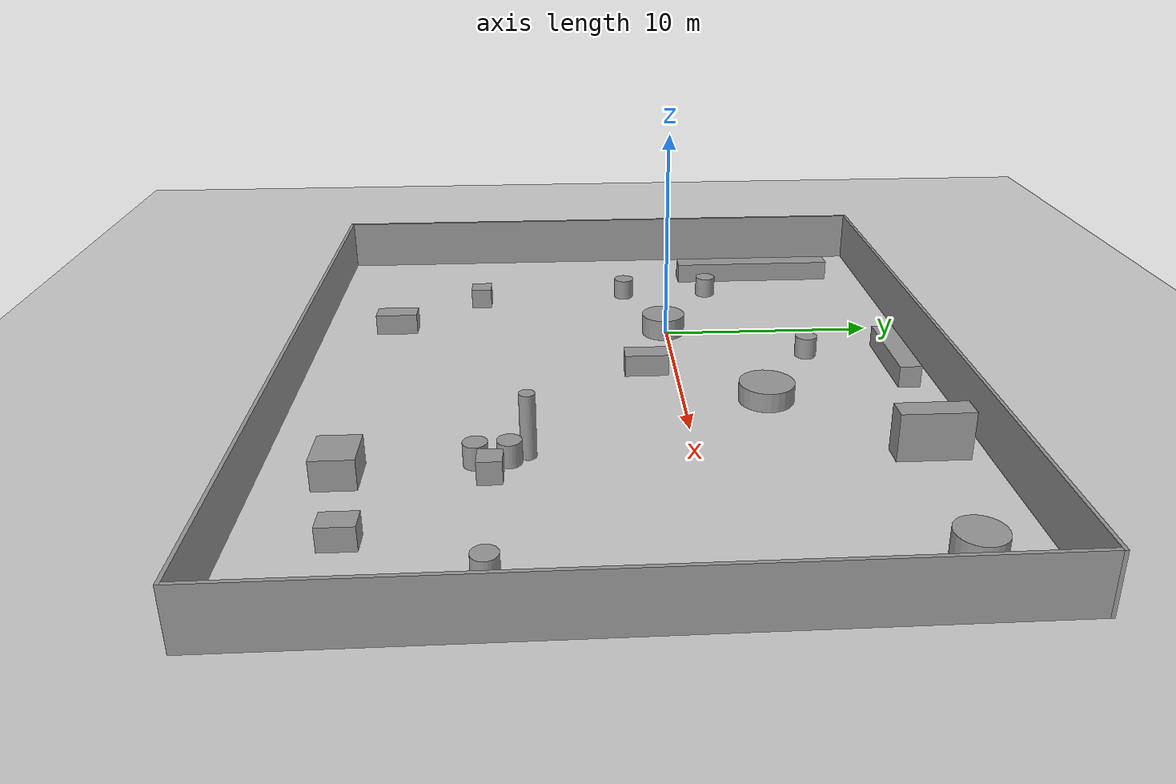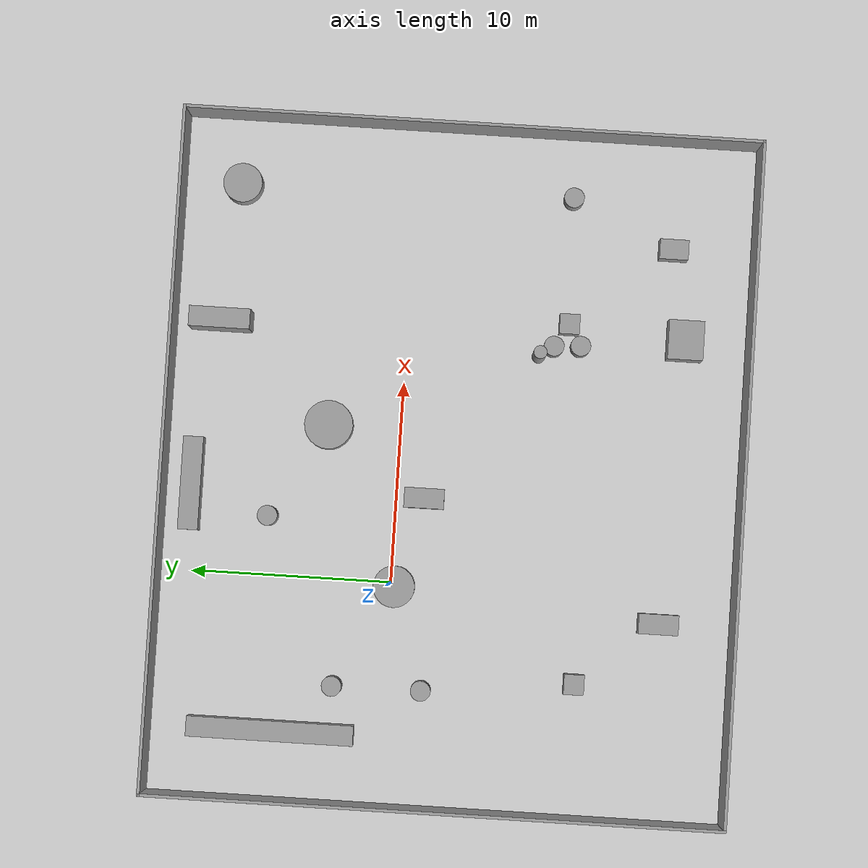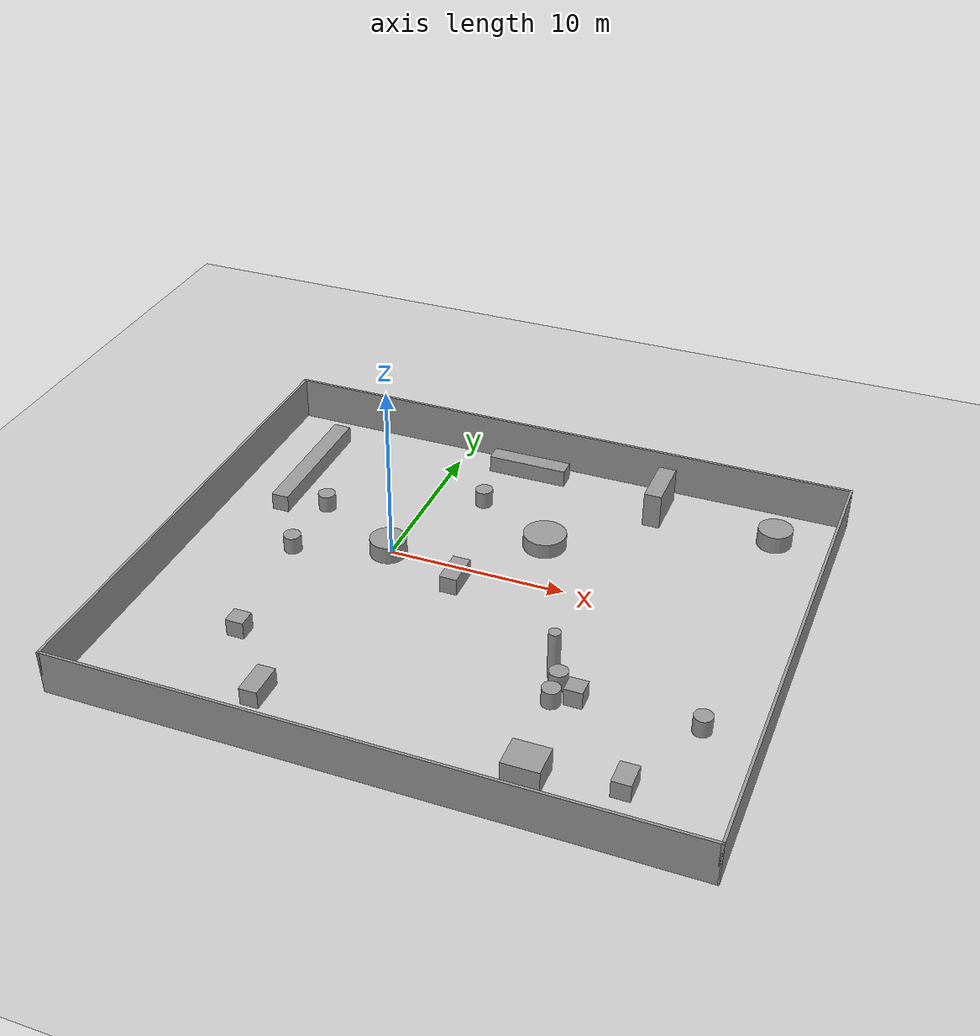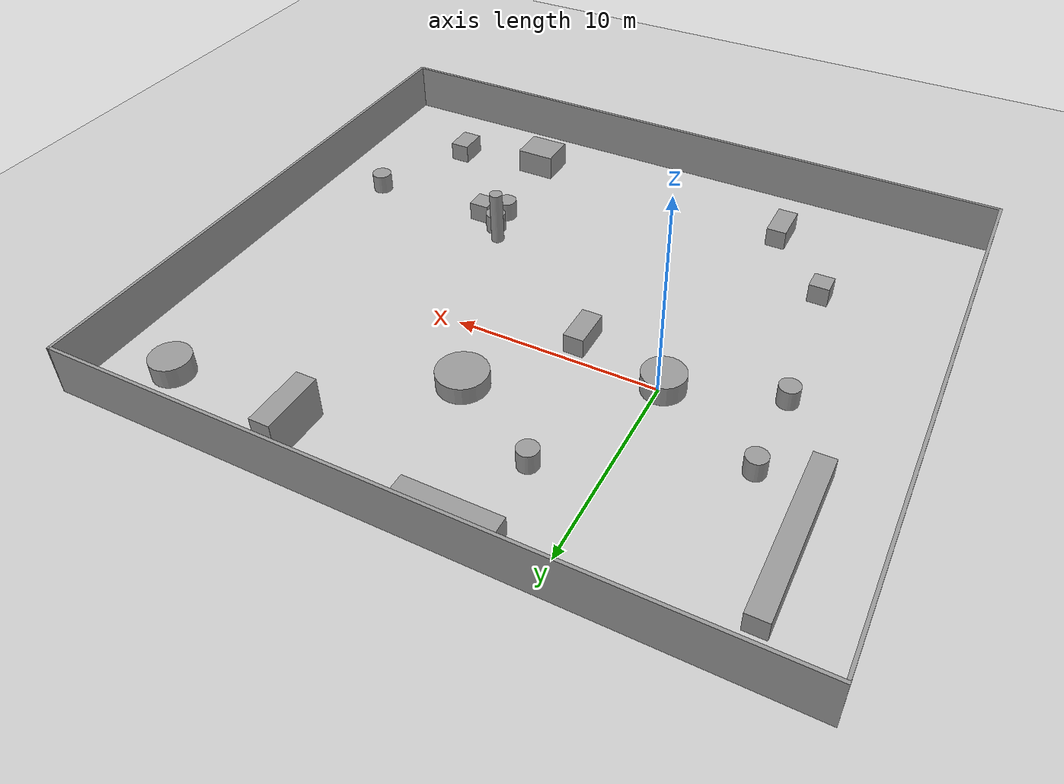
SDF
<sdf version="1.7">
 <world name="default">
  <model name="ground_plane">
   <static>1</static>
   <link name="link">
    <collision name="collision">
     <geometry><plane><normal>0 0 1</normal><size>100 100</size></plane></geometry>
     <surface><friction><ode><mu>100</mu><mu2>50</mu2></ode></friction></surface>
    </collision>
    <visual name="visual">
     <cast_shadows>0</cast_shadows>
     <geometry><plane><normal>0 0 1</normal><size>100 100</size></plane></geometry>
     <material>
      <script><uri>file://media/materials/scripts/gazebo.material</uri><name>Gazebo/Grey</name></script>
     </material>
    </visual>
   </link>
  </model>
  <model name="paper_world">
   <pose>5.91262 -2.7055 0 0 -0 0</pose>
   <link name="Wall_10">
    <collision name="Wall_10_Collision">
     <geometry><box><size>34 0.15 2.5</size></box></geometry>
     <pose>0 0 1.25 0 -0 0</pose>
    </collision>
    <visual name="Wall_10_Visual">
     <pose>0 0 1.25 0 -0 0</pose>
     <geometry><box><size>34 0.15 2.5</size></box></geometry>
     <material>
      <script><uri>file://media/materials/scripts/gazebo.material</uri><name>Gazebo/Grey</name></script>
      <ambient>1 1 1 1</ambient>
     </material>
     <meta><layer>0</layer></meta>
    </visual>
    <pose>-0 14.3 0 0 -0 0</pose>
   </link>
   <link name="Wall_2">
    <collision name="Wall_2_Collision">
     <geometry><box><size>28.75 0.15 2.5</size></box></geometry>
     <pose>0 0 1.25 0 -0 0</pose>
    </collision>
    <visual name="Wall_2_Visual">
     <pose>0 0 1.25 0 -0 0</pose>
     <geometry><box><size>28.75 0.15 2.5</size></box></geometry>
     <material>
      <script><uri>file://media/materials/scripts/gazebo.material</uri><name>Gazebo/Grey</name></script>
      <ambient>1 1 1 1</ambient>
     </material>
     <meta><layer>0</layer></meta>
    </visual>
    <pose>-16.925 -0 0 0 -0 -1.5708</pose>
   </link>
   <link name="Wall_3">
    <collision name="Wall_3_Collision">
     <geometry><box><size>34 0.15 2.5</size></box></geometry>
     <pose>0 0 1.25 0 -0 0</pose>
    </collision>
    <visual name="Wall_3_Visual">
     <pose>0 0 1.25 0 -0 0</pose>
     <geometry><box><size>34 0.15 2.5</size></box></geometry>
     <material>
      <script><uri>file://media/materials/scripts/gazebo.material</uri><name>Gazebo/Grey</name></script>
      <ambient>1 1 1 1</ambient>
     </material>
     <meta><layer>0</layer></meta>
    </visual>
    <pose>-0 -14.3 0 0 -0 0</pose>
   </link>
   <link name="Wall_4">
    <collision name="Wall_4_Collision">
     <geometry><box><size>28.75 0.15 2.5</size></box></geometry>
     <pose>0 0 1.25 0 -0 0</pose>
    </collision>
    <visual name="Wall_4_Visual">
     <pose>0 0 1.25 0 -0 0</pose>
     <geometry><box><size>28.75 0.15 2.5</size></box></geometry>
     <material>
      <script><uri>file://media/materials/scripts/gazebo.material</uri><name>Gazebo/Grey</name></script>
      <ambient>1 1 1 1</ambient>
     </material>
     <meta><layer>0</layer></meta>
    </visual>
    <pose>16.925 -0 0 0 -0 1.5708</pose>
   </link>
   <static>1</static>
  </model>
  <model name="fuza">
   <link name="link_0">
    <inertial>
     <mass>1</mass>
     <inertia><ixx>0.145833</ixx><ixy>0</ixy><ixz>0</ixz><iyy>0.145833</iyy><iyz>0</iyz><izz>0.125</izz></inertia>
    </inertial>
    <pose>-11.9522 5.00292 -0 0 -0 0</pose>
    <visual name="visual">
     <geometry><cylinder><radius>0.5</radius><length>1</length></cylinder></geometry>
     <material>
      <lighting>1</lighting>
      <script><uri>file://media/materials/scripts/gazebo.material</uri><name>Gazebo/Grey</name></script>
      <shader type="pixel"/>
     </material>
    </visual>
    <collision name="collision">
     <geometry><cylinder><radius>0.5</radius><length>1</length></cylinder></geometry>
     <surface>
      <friction>
       <ode><mu>1</mu><mu2>1</mu2><fdir1>0 0 0</fdir1><slip1>0</slip1><slip2>0</slip2></ode>
       <torsional>
        <coefficient>1</coefficient>
        <patch_radius>0</patch_radius>
        <surface_radius>0</surface_radius>
        <use_patch_radius>1</use_patch_radius>
        <ode><slip>0</slip></ode>
       </torsional>
      </friction>
      <bounce><restitution_coefficient>0</restitution_coefficient><threshold>1e+06</threshold></bounce>
      <contact>
       <collide_without_contact>0</collide_without_contact>
       <collide_without_contact_bitmask>1</collide_without_contact_bitmask>
       <collide_bitmask>1</collide_bitmask>
       <ode>
        <soft_cfm>0</soft_cfm>
        <soft_erp>0.2</soft_erp>
        <kp>1e+13</kp>
        <kd>1</kd>
        <max_vel>0.01</max_vel>
        <min_depth>0</min_depth>
       </ode>
       <bullet>
        <split_impulse>1</split_impulse>
        <split_impulse_penetration_threshold>-0.01</split_impulse_penetration_threshold>
        <soft_cfm>0</soft_cfm>
        <soft_erp>0.2</soft_erp>
        <kp>1e+13</kp>
        <kd>1</kd>
       </bullet>
      </contact>
     </surface>
    </collision>
   </link>
   <link name="link_11">
    <inertial>
     <mass>1.98679</mass>
     <inertia>
      <ixx>0.819115</ixx>
      <ixy>0</ixy>
      <ixz>0</ixz>
      <iyy>0.331132</iyy>
      <iyz>0</iyz>
      <izz>0.819115</izz>
     </inertia>
    </inertial>
    <pose>-2.38647 1.012 -0 0 -0 0</pose>
    <visual name="visual">
     <geometry><box><size>1 1.9868 1</size></box></geometry>
     <material>
      <lighting>1</lighting>
      <script><uri>file://media/materials/scripts/gazebo.material</uri><name>Gazebo/Grey</name></script>
      <shader type="pixel"/>
     </material>
    </visual>
    <collision name="collision">
     <geometry><box><size>1 1.9868 1</size></box></geometry>
     <surface>
      <friction>
       <ode><mu>1</mu><mu2>1</mu2><fdir1>0 0 0</fdir1><slip1>0</slip1><slip2>0</slip2></ode>
       <torsional>
        <coefficient>1</coefficient>
        <patch_radius>0</patch_radius>
        <surface_radius>0</surface_radius>
        <use_patch_radius>1</use_patch_radius>
        <ode><slip>0</slip></ode>
       </torsional>
      </friction>
      <bounce><restitution_coefficient>0</restitution_coefficient><threshold>1e+06</threshold></bounce>
      <contact>
       <collide_without_contact>0</collide_without_contact>
       <collide_without_contact_bitmask>1</collide_without_contact_bitmask>
       <collide_bitmask>1</collide_bitmask>
       <ode>
        <soft_cfm>0</soft_cfm>
        <soft_erp>0.2</soft_erp>
        <kp>1e+13</kp>
        <kd>1</kd>
        <max_vel>0.01</max_vel>
        <min_depth>0</min_depth>
       </ode>
       <bullet>
        <split_impulse>1</split_impulse>
        <split_impulse_penetration_threshold>-0.01</split_impulse_penetration_threshold>
        <soft_cfm>0</soft_cfm>
        <soft_erp>0.2</soft_erp>
        <kp>1e+13</kp>
        <kd>1</kd>
       </bullet>
      </contact>
     </surface>
    </collision>
   </link>
   <link name="link_12">
    <inertial>
     <mass>5.11595</mass>
     <inertia><ixx>2.20052</ixx><ixy>0</ixy><ixz>0</ixz><iyy>2.20052</iyy><iyz>0</iyz><izz>3.75336</izz></inertia>
    </inertial>
    <pose>0.962557 5.97068 0 0 -0 0</pose>
    <visual name="visual">
     <geometry><cylinder><radius>1.21133</radius><length>0.871556</length></cylinder></geometry>
     <material>
      <lighting>1</lighting>
      <script><uri>file://media/materials/scripts/gazebo.material</uri><name>Gazebo/Grey</name></script>
      <shader type="pixel"/>
     </material>
    </visual>
    <collision name="collision">
     <geometry><cylinder><radius>1.21133</radius><length>0.871556</length></cylinder></geometry>
     <surface>
      <friction>
       <ode><mu>1</mu><mu2>1</mu2><fdir1>0 0 0</fdir1><slip1>0</slip1><slip2>0</slip2></ode>
       <torsional>
        <coefficient>1</coefficient>
        <patch_radius>0</patch_radius>
        <surface_radius>0</surface_radius>
        <use_patch_radius>1</use_patch_radius>
        <ode><slip>0</slip></ode>
       </torsional>
      </friction>
      <bounce><restitution_coefficient>0</restitution_coefficient><threshold>1e+06</threshold></bounce>
      <contact>
       <collide_without_contact>0</collide_without_contact>
       <collide_without_contact_bitmask>1</collide_without_contact_bitmask>
       <collide_bitmask>1</collide_bitmask>
       <ode>
        <soft_cfm>0</soft_cfm>
        <soft_erp>0.2</soft_erp>
        <kp>1e+13</kp>
        <kd>1</kd>
        <max_vel>0.01</max_vel>
        <min_depth>0</min_depth>
       </ode>
       <bullet>
        <split_impulse>1</split_impulse>
        <split_impulse_penetration_threshold>-0.01</split_impulse_penetration_threshold>
        <soft_cfm>0</soft_cfm>
        <soft_erp>0.2</soft_erp>
        <kp>1e+13</kp>
        <kd>1</kd>
       </bullet>
      </contact>
     </surface>
    </collision>
   </link>
   <link name="link_13">
    <inertial>
     <mass>1.90421</mass>
     <inertia><ixx>3.26258</ixx><ixy>0</ixy><ixz>0</ixz><iyy>3.26258</iyy><iyz>0</iyz><izz>0.100741</izz></inertia>
    </inertial>
    <pose>5.05919 -4.24487 -0 0 -0 0</pose>
    <visual name="visual">
     <geometry><cylinder><radius>0.325283</radius><length>4.4992</length></cylinder></geometry>
     <material>
      <lighting>1</lighting>
      <script><uri>file://media/materials/scripts/gazebo.material</uri><name>Gazebo/Grey</name></script>
      <shader type="pixel"/>
     </material>
    </visual>
    <collision name="collision">
     <geometry><cylinder><radius>0.325283</radius><length>4.4992</length></cylinder></geometry>
     <surface>
      <friction>
       <ode><mu>1</mu><mu2>1</mu2><fdir1>0 0 0</fdir1><slip1>0</slip1><slip2>0</slip2></ode>
       <torsional>
        <coefficient>1</coefficient>
        <patch_radius>0</patch_radius>
        <surface_radius>0</surface_radius>
        <use_patch_radius>1</use_patch_radius>
        <ode><slip>0</slip></ode>
       </torsional>
      </friction>
      <bounce><restitution_coefficient>0</restitution_coefficient><threshold>1e+06</threshold></bounce>
      <contact>
       <collide_without_contact>0</collide_without_contact>
       <collide_without_contact_bitmask>1</collide_without_contact_bitmask>
       <collide_bitmask>1</collide_bitmask>
       <ode>
        <soft_cfm>0</soft_cfm>
        <soft_erp>0.2</soft_erp>
        <kp>1e+13</kp>
        <kd>1</kd>
        <max_vel>0.01</max_vel>
        <min_depth>0</min_depth>
       </ode>
       <bullet>
        <split_impulse>1</split_impulse>
        <split_impulse_penetration_threshold>-0.01</split_impulse_penetration_threshold>
        <soft_cfm>0</soft_cfm>
        <soft_erp>0.2</soft_erp>
        <kp>1e+13</kp>
        <kd>1</kd>
       </bullet>
      </contact>
     </surface>
    </collision>
   </link>
   <link name="link_14">
    <inertial>
     <mass>1.98339</mass>
     <inertia>
      <ixx>0.815475</ixx>
      <ixy>0</ixy>
      <ixz>0</ixz>
      <iyy>0.330564</iyy>
      <iyz>0</iyz>
      <izz>0.815475</izz>
     </inertia>
    </inertial>
    <pose>-7.9015 -10.9556 -0 0 -0 0</pose>
    <visual name="visual">
     <geometry><box><size>1 1.98339 1</size></box></geometry>
     <material>
      <lighting>1</lighting>
      <script><uri>file://media/materials/scripts/gazebo.material</uri><name>Gazebo/Grey</name></script>
      <shader type="pixel"/>
     </material>
    </visual>
    <collision name="collision">
     <geometry><box><size>1 1.98339 1</size></box></geometry>
     <surface>
      <friction>
       <ode><mu>1</mu><mu2>1</mu2><fdir1>0 0 0</fdir1><slip1>0</slip1><slip2>0</slip2></ode>
       <torsional>
        <coefficient>1</coefficient>
        <patch_radius>0</patch_radius>
        <surface_radius>0</surface_radius>
        <use_patch_radius>1</use_patch_radius>
        <ode><slip>0</slip></ode>
       </torsional>
      </friction>
      <bounce><restitution_coefficient>0</restitution_coefficient><threshold>1e+06</threshold></bounce>
      <contact>
       <collide_without_contact>0</collide_without_contact>
       <collide_without_contact_bitmask>1</collide_without_contact_bitmask>
       <collide_bitmask>1</collide_bitmask>
       <ode>
        <soft_cfm>0</soft_cfm>
        <soft_erp>0.2</soft_erp>
        <kp>1e+13</kp>
        <kd>1</kd>
        <max_vel>0.01</max_vel>
        <min_depth>0</min_depth>
       </ode>
       <bullet>
        <split_impulse>1</split_impulse>
        <split_impulse_penetration_threshold>-0.01</split_impulse_penetration_threshold>
        <soft_cfm>0</soft_cfm>
        <soft_erp>0.2</soft_erp>
        <kp>1e+13</kp>
        <kd>1</kd>
       </bullet>
      </contact>
     </surface>
    </collision>
   </link>
   <link name="link_15">
    <inertial>
     <mass>1</mass>
     <inertia><ixx>0.145833</ixx><ixy>0</ixy><ixz>0</ixz><iyy>0.145833</iyy><iyz>0</iyz><izz>0.125</izz></inertia>
    </inertial>
    <pose>5.5608 -4.96359 0 0 -0 0</pose>
    <visual name="visual">
     <geometry><cylinder><radius>0.5</radius><length>1</length></cylinder></geometry>
     <material>
      <lighting>1</lighting>
      <script><uri>file://media/materials/scripts/gazebo.material</uri><name>Gazebo/Grey</name></script>
      <shader type="pixel"/>
     </material>
    </visual>
    <collision name="collision">
     <geometry><cylinder><radius>0.5</radius><length>1</length></cylinder></geometry>
     <surface>
      <friction>
       <ode><mu>1</mu><mu2>1</mu2><fdir1>0 0 0</fdir1><slip1>0</slip1><slip2>0</slip2></ode>
       <torsional>
        <coefficient>1</coefficient>
        <patch_radius>0</patch_radius>
        <surface_radius>0</surface_radius>
        <use_patch_radius>1</use_patch_radius>
        <ode><slip>0</slip></ode>
       </torsional>
      </friction>
      <bounce><restitution_coefficient>0</restitution_coefficient><threshold>1e+06</threshold></bounce>
      <contact>
       <collide_without_contact>0</collide_without_contact>
       <collide_without_contact_bitmask>1</collide_without_contact_bitmask>
       <collide_bitmask>1</collide_bitmask>
       <ode>
        <soft_cfm>0</soft_cfm>
        <soft_erp>0.2</soft_erp>
        <kp>1e+13</kp>
        <kd>1</kd>
        <max_vel>0.01</max_vel>
        <min_depth>0</min_depth>
       </ode>
       <bullet>
        <split_impulse>1</split_impulse>
        <split_impulse_penetration_threshold>-0.01</split_impulse_penetration_threshold>
        <soft_cfm>0</soft_cfm>
        <soft_erp>0.2</soft_erp>
        <kp>1e+13</kp>
        <kd>1</kd>
       </bullet>
      </contact>
     </surface>
    </collision>
   </link>
   <link name="link_16">
    <inertial>
     <mass>1</mass>
     <inertia><ixx>0.145833</ixx><ixy>0</ixy><ixz>0</ixz><iyy>0.145833</iyy><iyz>0</iyz><izz>0.125</izz></inertia>
    </inertial>
    <pose>5.64099 -6.28555 -0 0 -0 0</pose>
    <visual name="visual">
     <geometry><cylinder><radius>0.5</radius><length>1</length></cylinder></geometry>
     <material>
      <lighting>1</lighting>
      <script><uri>file://media/materials/scripts/gazebo.material</uri><name>Gazebo/Grey</name></script>
      <shader type="pixel"/>
     </material>
    </visual>
    <collision name="collision">
     <geometry><cylinder><radius>0.5</radius><length>1</length></cylinder></geometry>
     <surface>
      <friction>
       <ode><mu>1</mu><mu2>1</mu2><fdir1>0 0 0</fdir1><slip1>0</slip1><slip2>0</slip2></ode>
       <torsional>
        <coefficient>1</coefficient>
        <patch_radius>0</patch_radius>
        <surface_radius>0</surface_radius>
        <use_patch_radius>1</use_patch_radius>
        <ode><slip>0</slip></ode>
       </torsional>
      </friction>
      <bounce><restitution_coefficient>0</restitution_coefficient><threshold>1e+06</threshold></bounce>
      <contact>
       <collide_without_contact>0</collide_without_contact>
       <collide_without_contact_bitmask>1</collide_without_contact_bitmask>
       <collide_bitmask>1</collide_bitmask>
       <ode>
        <soft_cfm>0</soft_cfm>
        <soft_erp>0.2</soft_erp>
        <kp>1e+13</kp>
        <kd>1</kd>
        <max_vel>0.01</max_vel>
        <min_depth>0</min_depth>
       </ode>
       <bullet>
        <split_impulse>1</split_impulse>
        <split_impulse_penetration_threshold>-0.01</split_impulse_penetration_threshold>
        <soft_cfm>0</soft_cfm>
        <soft_erp>0.2</soft_erp>
        <kp>1e+13</kp>
        <kd>1</kd>
       </bullet>
      </contact>
     </surface>
    </collision>
   </link>
   <link name="link_18">
    <inertial>
     <mass>1</mass>
     <inertia>
      <ixx>0.166667</ixx>
      <ixy>0</ixy>
      <ixz>0</ixz>
      <iyy>0.166667</iyy>
      <iyz>0</iyz>
      <izz>0.166667</izz>
     </inertia>
    </inertial>
    <pose>6.71491 -5.66967 0 0 -0 0</pose>
    <visual name="visual">
     <geometry><box><size>1 1 1</size></box></geometry>
     <material>
      <lighting>1</lighting>
      <script><uri>file://media/materials/scripts/gazebo.material</uri><name>Gazebo/Grey</name></script>
      <shader type="pixel"/>
     </material>
    </visual>
    <collision name="collision">
     <geometry><box><size>1 1 1</size></box></geometry>
     <surface>
      <friction>
       <ode><mu>1</mu><mu2>1</mu2><fdir1>0 0 0</fdir1><slip1>0</slip1><slip2>0</slip2></ode>
       <torsional>
        <coefficient>1</coefficient>
        <patch_radius>0</patch_radius>
        <surface_radius>0</surface_radius>
        <use_patch_radius>1</use_patch_radius>
        <ode><slip>0</slip></ode>
       </torsional>
      </friction>
      <bounce><restitution_coefficient>0</restitution_coefficient><threshold>1e+06</threshold></bounce>
      <contact>
       <collide_without_contact>0</collide_without_contact>
       <collide_without_contact_bitmask>1</collide_without_contact_bitmask>
       <collide_bitmask>1</collide_bitmask>
       <ode>
        <soft_cfm>0</soft_cfm>
        <soft_erp>0.2</soft_erp>
        <kp>1e+13</kp>
        <kd>1</kd>
        <max_vel>0.01</max_vel>
        <min_depth>0</min_depth>
       </ode>
       <bullet>
        <split_impulse>1</split_impulse>
        <split_impulse_penetration_threshold>-0.01</split_impulse_penetration_threshold>
        <soft_cfm>0</soft_cfm>
        <soft_erp>0.2</soft_erp>
        <kp>1e+13</kp>
        <kd>1</kd>
       </bullet>
      </contact>
     </surface>
    </collision>
   </link>
   <link name="link_19">
    <inertial>
     <mass>8.27389</mass>
     <inertia><ixx>47.89</ixx><ixy>0</ixy><ixz>0</ixz><iyy>1.37898</iyy><iyz>0</iyz><izz>47.89</izz></inertia>
    </inertial>
    <pose>-14.3414 7.91214 0 0 -0 0</pose>
    <visual name="visual">
     <geometry><box><size>1 8.27388 1</size></box></geometry>
     <material>
      <lighting>1</lighting>
      <script><uri>file://media/materials/scripts/gazebo.material</uri><name>Gazebo/Grey</name></script>
      <shader type="pixel"/>
     </material>
    </visual>
    <collision name="collision">
     <geometry><box><size>1 8.27388 1</size></box></geometry>
     <surface>
      <friction>
       <ode><mu>1</mu><mu2>1</mu2><fdir1>0 0 0</fdir1><slip1>0</slip1><slip2>0</slip2></ode>
       <torsional>
        <coefficient>1</coefficient>
        <patch_radius>0</patch_radius>
        <surface_radius>0</surface_radius>
        <use_patch_radius>1</use_patch_radius>
        <ode><slip>0</slip></ode>
       </torsional>
      </friction>
      <bounce><restitution_coefficient>0</restitution_coefficient><threshold>1e+06</threshold></bounce>
      <contact>
       <collide_without_contact>0</collide_without_contact>
       <collide_without_contact_bitmask>1</collide_without_contact_bitmask>
       <collide_bitmask>1</collide_bitmask>
       <ode>
        <soft_cfm>0</soft_cfm>
        <soft_erp>0.2</soft_erp>
        <kp>1e+13</kp>
        <kd>1</kd>
        <max_vel>0.01</max_vel>
        <min_depth>0</min_depth>
       </ode>
       <bullet>
        <split_impulse>1</split_impulse>
        <split_impulse_penetration_threshold>-0.01</split_impulse_penetration_threshold>
        <soft_cfm>0</soft_cfm>
        <soft_erp>0.2</soft_erp>
        <kp>1e+13</kp>
        <kd>1</kd>
       </bullet>
      </contact>
     </surface>
    </collision>
   </link>
   <link name="link_2">
    <inertial>
     <mass>1</mass>
     <inertia>
      <ixx>0.166667</ixx>
      <ixy>0</ixy>
      <ixz>0</ixz>
      <iyy>0.166667</iyy>
      <iyz>0</iyz>
      <izz>0.166667</izz>
     </inertia>
    </inertial>
    <pose>-11.1282 -6.95628 -0 0 -0 0</pose>
    <visual name="visual">
     <geometry><box><size>1 1 1</size></box></geometry>
     <material>
      <lighting>1</lighting>
      <script><uri>file://media/materials/scripts/gazebo.material</uri><name>Gazebo/Grey</name></script>
      <shader type="pixel"/>
     </material>
    </visual>
    <collision name="collision">
     <geometry><box><size>1 1 1</size></box></geometry>
     <surface>
      <friction>
       <ode><mu>1</mu><mu2>1</mu2><fdir1>0 0 0</fdir1><slip1>0</slip1><slip2>0</slip2></ode>
       <torsional>
        <coefficient>1</coefficient>
        <patch_radius>0</patch_radius>
        <surface_radius>0</surface_radius>
        <use_patch_radius>1</use_patch_radius>
        <ode><slip>0</slip></ode>
       </torsional>
      </friction>
      <bounce><restitution_coefficient>0</restitution_coefficient><threshold>1e+06</threshold></bounce>
      <contact>
       <collide_without_contact>0</collide_without_contact>
       <collide_without_contact_bitmask>1</collide_without_contact_bitmask>
       <collide_bitmask>1</collide_bitmask>
       <ode>
        <soft_cfm>0</soft_cfm>
        <soft_erp>0.2</soft_erp>
        <kp>1e+13</kp>
        <kd>1</kd>
        <max_vel>0.01</max_vel>
        <min_depth>0</min_depth>
       </ode>
       <bullet>
        <split_impulse>1</split_impulse>
        <split_impulse_penetration_threshold>-0.01</split_impulse_penetration_threshold>
        <soft_cfm>0</soft_cfm>
        <soft_erp>0.2</soft_erp>
        <kp>1e+13</kp>
        <kd>1</kd>
       </bullet>
      </contact>
     </surface>
    </collision>
   </link>
   <link name="link_20">
    <inertial>
     <mass>4.63111</mass>
     <inertia><ixx>0.771852</ixx><ixy>0</ixy><ixz>0</ixz><iyy>8.66298</iyy><iyz>0</iyz><izz>8.66298</izz></inertia>
    </inertial>
    <pose>-2.34904 12.6192 0 0 -0 0</pose>
    <visual name="visual">
     <geometry><box><size>4.63112 1 1</size></box></geometry>
     <material>
      <lighting>1</lighting>
      <script><uri>file://media/materials/scripts/gazebo.material</uri><name>Gazebo/Grey</name></script>
      <shader type="pixel"/>
     </material>
    </visual>
    <collision name="collision">
     <geometry><box><size>4.63112 1 1</size></box></geometry>
     <surface>
      <friction>
       <ode><mu>1</mu><mu2>1</mu2><fdir1>0 0 0</fdir1><slip1>0</slip1><slip2>0</slip2></ode>
       <torsional>
        <coefficient>1</coefficient>
        <patch_radius>0</patch_radius>
        <surface_radius>0</surface_radius>
        <use_patch_radius>1</use_patch_radius>
        <ode><slip>0</slip></ode>
       </torsional>
      </friction>
      <bounce><restitution_coefficient>0</restitution_coefficient><threshold>1e+06</threshold></bounce>
      <contact>
       <collide_without_contact>0</collide_without_contact>
       <collide_without_contact_bitmask>1</collide_without_contact_bitmask>
       <collide_bitmask>1</collide_bitmask>
       <ode>
        <soft_cfm>0</soft_cfm>
        <soft_erp>0.2</soft_erp>
        <kp>1e+13</kp>
        <kd>1</kd>
        <max_vel>0.01</max_vel>
        <min_depth>0</min_depth>
       </ode>
       <bullet>
        <split_impulse>1</split_impulse>
        <split_impulse_penetration_threshold>-0.01</split_impulse_penetration_threshold>
        <soft_cfm>0</soft_cfm>
        <soft_erp>0.2</soft_erp>
        <kp>1e+13</kp>
        <kd>1</kd>
       </bullet>
      </contact>
     </surface>
    </collision>
   </link>
   <link name="link_21">
    <inertial>
     <mass>1</mass>
     <inertia><ixx>0.145833</ixx><ixy>0</ixy><ixz>0</ixz><iyy>0.145833</iyy><iyz>0</iyz><izz>0.125</izz></inertia>
    </inertial>
    <pose>-11.9174 0.594151 0 0 -0 0</pose>
    <visual name="visual">
     <geometry><cylinder><radius>0.5</radius><length>1</length></cylinder></geometry>
     <material>
      <lighting>1</lighting>
      <script><uri>file://media/materials/scripts/gazebo.material</uri><name>Gazebo/Grey</name></script>
      <shader type="pixel"/>
     </material>
    </visual>
    <collision name="collision">
     <geometry><cylinder><radius>0.5</radius><length>1</length></cylinder></geometry>
     <surface>
      <friction>
       <ode><mu>1</mu><mu2>1</mu2><fdir1>0 0 0</fdir1><slip1>0</slip1><slip2>0</slip2></ode>
       <torsional>
        <coefficient>1</coefficient>
        <patch_radius>0</patch_radius>
        <surface_radius>0</surface_radius>
        <use_patch_radius>1</use_patch_radius>
        <ode><slip>0</slip></ode>
       </torsional>
      </friction>
      <bounce><restitution_coefficient>0</restitution_coefficient><threshold>1e+06</threshold></bounce>
      <contact>
       <collide_without_contact>0</collide_without_contact>
       <collide_without_contact_bitmask>1</collide_without_contact_bitmask>
       <collide_bitmask>1</collide_bitmask>
       <ode>
        <soft_cfm>0</soft_cfm>
        <soft_erp>0.2</soft_erp>
        <kp>1e+13</kp>
        <kd>1</kd>
        <max_vel>0.01</max_vel>
        <min_depth>0</min_depth>
       </ode>
       <bullet>
        <split_impulse>1</split_impulse>
        <split_impulse_penetration_threshold>-0.01</split_impulse_penetration_threshold>
        <soft_cfm>0</soft_cfm>
        <soft_erp>0.2</soft_erp>
        <kp>1e+13</kp>
        <kd>1</kd>
       </bullet>
      </contact>
     </surface>
    </collision>
   </link>
   <link name="link_22">
    <inertial>
     <mass>4.29206</mass>
     <inertia><ixx>1.50903</ixx><ixy>0</ixy><ixz>0</ixz><iyy>1.50903</iyy><iyz>0</iyz><izz>2.30273</izz></inertia>
    </inertial>
    <pose>-6.85437 2.23218 -0 0 -0 0</pose>
    <visual name="visual">
     <geometry><cylinder><radius>1.03587</radius><length>1</length></cylinder></geometry>
     <material>
      <lighting>1</lighting>
      <script><uri>file://media/materials/scripts/gazebo.material</uri><name>Gazebo/Grey</name></script>
      <shader type="pixel"/>
     </material>
    </visual>
    <collision name="collision">
     <geometry><cylinder><radius>1.03587</radius><length>1</length></cylinder></geometry>
     <surface>
      <friction>
       <ode><mu>1</mu><mu2>1</mu2><fdir1>0 0 0</fdir1><slip1>0</slip1><slip2>0</slip2></ode>
       <torsional>
        <coefficient>1</coefficient>
        <patch_radius>0</patch_radius>
        <surface_radius>0</surface_radius>
        <use_patch_radius>1</use_patch_radius>
        <ode><slip>0</slip></ode>
       </torsional>
      </friction>
      <bounce><restitution_coefficient>0</restitution_coefficient><threshold>1e+06</threshold></bounce>
      <contact>
       <collide_without_contact>0</collide_without_contact>
       <collide_without_contact_bitmask>1</collide_without_contact_bitmask>
       <collide_bitmask>1</collide_bitmask>
       <ode>
        <soft_cfm>0</soft_cfm>
        <soft_erp>0.2</soft_erp>
        <kp>1e+13</kp>
        <kd>1</kd>
        <max_vel>0.01</max_vel>
        <min_depth>0</min_depth>
       </ode>
       <bullet>
        <split_impulse>1</split_impulse>
        <split_impulse_penetration_threshold>-0.01</split_impulse_penetration_threshold>
        <soft_cfm>0</soft_cfm>
        <soft_erp>0.2</soft_erp>
        <kp>1e+13</kp>
        <kd>1</kd>
       </bullet>
      </contact>
     </surface>
    </collision>
   </link>
   <link name="link_3">
    <inertial>
     <mass>3.79853</mass>
     <inertia><ixx>1.21835</ixx><ixy>0</ixy><ixz>0</ixz><iyy>1.21835</iyy><iyz>0</iyz><izz>1.80362</izz></inertia>
    </inertial>
    <pose>12.7402 11.0073 0 0 -0 0</pose>
    <visual name="visual">
     <geometry><cylinder><radius>0.974495</radius><length>1</length></cylinder></geometry>
     <material>
      <lighting>1</lighting>
      <script><uri>file://media/materials/scripts/gazebo.material</uri><name>Gazebo/Grey</name></script>
      <shader type="pixel"/>
     </material>
    </visual>
    <collision name="collision">
     <geometry><cylinder><radius>0.974495</radius><length>1</length></cylinder></geometry>
     <surface>
      <friction>
       <ode><mu>1</mu><mu2>1</mu2><fdir1>0 0 0</fdir1><slip1>0</slip1><slip2>0</slip2></ode>
       <torsional>
        <coefficient>1</coefficient>
        <patch_radius>0</patch_radius>
        <surface_radius>0</surface_radius>
        <use_patch_radius>1</use_patch_radius>
        <ode><slip>0</slip></ode>
       </torsional>
      </friction>
      <bounce><restitution_coefficient>0</restitution_coefficient><threshold>1e+06</threshold></bounce>
      <contact>
       <collide_without_contact>0</collide_without_contact>
       <collide_without_contact_bitmask>1</collide_without_contact_bitmask>
       <collide_bitmask>1</collide_bitmask>
       <ode>
        <soft_cfm>0</soft_cfm>
        <soft_erp>0.2</soft_erp>
        <kp>1e+13</kp>
        <kd>1</kd>
        <max_vel>0.01</max_vel>
        <min_depth>0</min_depth>
       </ode>
       <bullet>
        <split_impulse>1</split_impulse>
        <split_impulse_penetration_threshold>-0.01</split_impulse_penetration_threshold>
        <soft_cfm>0</soft_cfm>
        <soft_erp>0.2</soft_erp>
        <kp>1e+13</kp>
        <kd>1</kd>
       </bullet>
      </contact>
     </surface>
    </collision>
   </link>
   <link name="link_5">
    <inertial>
     <mass>1.43534</mass>
     <inertia>
      <ixx>0.366036</ixx>
      <ixy>0</ixy>
      <ixz>0</ixz>
      <iyy>0.239224</iyy>
      <iyz>0</iyz>
      <izz>0.366036</izz>
     </inertia>
    </inertial>
    <pose>10.7534 -10.6365 -0 0 -0 0</pose>
    <visual name="visual">
     <geometry><box><size>1 1.43534 1</size></box></geometry>
     <material>
      <lighting>1</lighting>
      <script><uri>file://media/materials/scripts/gazebo.material</uri><name>Gazebo/Grey</name></script>
      <shader type="pixel"/>
     </material>
    </visual>
    <collision name="collision">
     <geometry><box><size>1 1.43534 1</size></box></geometry>
     <surface>
      <friction>
       <ode><mu>1</mu><mu2>1</mu2><fdir1>0 0 0</fdir1><slip1>0</slip1><slip2>0</slip2></ode>
       <torsional>
        <coefficient>1</coefficient>
        <patch_radius>0</patch_radius>
        <surface_radius>0</surface_radius>
        <use_patch_radius>1</use_patch_radius>
        <ode><slip>0</slip></ode>
       </torsional>
      </friction>
      <bounce><restitution_coefficient>0</restitution_coefficient><threshold>1e+06</threshold></bounce>
      <contact>
       <collide_without_contact>0</collide_without_contact>
       <collide_without_contact_bitmask>1</collide_without_contact_bitmask>
       <collide_bitmask>1</collide_bitmask>
       <ode>
        <soft_cfm>0</soft_cfm>
        <soft_erp>0.2</soft_erp>
        <kp>1e+13</kp>
        <kd>1</kd>
        <max_vel>0.01</max_vel>
        <min_depth>0</min_depth>
       </ode>
       <bullet>
        <split_impulse>1</split_impulse>
        <split_impulse_penetration_threshold>-0.01</split_impulse_penetration_threshold>
        <soft_cfm>0</soft_cfm>
        <soft_erp>0.2</soft_erp>
        <kp>1e+13</kp>
        <kd>1</kd>
       </bullet>
      </contact>
     </surface>
    </collision>
   </link>
   <link name="link_6">
    <inertial>
     <mass>1</mass>
     <inertia><ixx>0.145833</ixx><ixy>0</ixy><ixz>0</ixz><iyy>0.145833</iyy><iyz>0</iyz><izz>0.125</izz></inertia>
    </inertial>
    <pose>13.0175 -5.51774 -0 0 -0 0</pose>
    <visual name="visual">
     <geometry><cylinder><radius>0.5</radius><length>1</length></cylinder></geometry>
     <material>
      <lighting>1</lighting>
      <script><uri>file://media/materials/scripts/gazebo.material</uri><name>Gazebo/Grey</name></script>
      <shader type="pixel"/>
     </material>
    </visual>
    <collision name="collision">
     <geometry><cylinder><radius>0.5</radius><length>1</length></cylinder></geometry>
     <surface>
      <friction>
       <ode><mu>1</mu><mu2>1</mu2><fdir1>0 0 0</fdir1><slip1>0</slip1><slip2>0</slip2></ode>
       <torsional>
        <coefficient>1</coefficient>
        <patch_radius>0</patch_radius>
        <surface_radius>0</surface_radius>
        <use_patch_radius>1</use_patch_radius>
        <ode><slip>0</slip></ode>
       </torsional>
      </friction>
      <bounce><restitution_coefficient>0</restitution_coefficient><threshold>1e+06</threshold></bounce>
      <contact>
       <collide_without_contact>0</collide_without_contact>
       <collide_without_contact_bitmask>1</collide_without_contact_bitmask>
       <collide_bitmask>1</collide_bitmask>
       <ode>
        <soft_cfm>0</soft_cfm>
        <soft_erp>0.2</soft_erp>
        <kp>1e+13</kp>
        <kd>1</kd>
        <max_vel>0.01</max_vel>
        <min_depth>0</min_depth>
       </ode>
       <bullet>
        <split_impulse>1</split_impulse>
        <split_impulse_penetration_threshold>-0.01</split_impulse_penetration_threshold>
        <soft_cfm>0</soft_cfm>
        <soft_erp>0.2</soft_erp>
        <kp>1e+13</kp>
        <kd>1</kd>
       </bullet>
      </contact>
     </surface>
    </collision>
   </link>
   <link name="link_7">
    <inertial>
     <mass>5.30995</mass>
     <inertia><ixx>2.41036</ixx><ixy>0</ixy><ixz>0</ixz><iyy>2.75199</iyy><iyz>0</iyz><izz>3.08949</izz></inertia>
    </inertial>
    <pose>6.24874 -11.4651 0 0 -0 0</pose>
    <visual name="visual">
     <geometry><box><size>1.96901 1.76209 1.53044</size></box></geometry>
     <material>
      <lighting>1</lighting>
      <script><uri>file://media/materials/scripts/gazebo.material</uri><name>Gazebo/Grey</name></script>
      <shader type="pixel"/>
     </material>
    </visual>
    <collision name="collision">
     <geometry><box><size>1.96901 1.76209 1.53044</size></box></geometry>
     <surface>
      <friction>
       <ode><mu>1</mu><mu2>1</mu2><fdir1>0 0 0</fdir1><slip1>0</slip1><slip2>0</slip2></ode>
       <torsional>
        <coefficient>1</coefficient>
        <patch_radius>0</patch_radius>
        <surface_radius>0</surface_radius>
        <use_patch_radius>1</use_patch_radius>
        <ode><slip>0</slip></ode>
       </torsional>
      </friction>
      <bounce><restitution_coefficient>0</restitution_coefficient><threshold>1e+06</threshold></bounce>
      <contact>
       <collide_without_contact>0</collide_without_contact>
       <collide_without_contact_bitmask>1</collide_without_contact_bitmask>
       <collide_bitmask>1</collide_bitmask>
       <ode>
        <soft_cfm>0</soft_cfm>
        <soft_erp>0.2</soft_erp>
        <kp>1e+13</kp>
        <kd>1</kd>
        <max_vel>0.01</max_vel>
        <min_depth>0</min_depth>
       </ode>
       <bullet>
        <split_impulse>1</split_impulse>
        <split_impulse_penetration_threshold>-0.01</split_impulse_penetration_threshold>
        <soft_cfm>0</soft_cfm>
        <soft_erp>0.2</soft_erp>
        <kp>1e+13</kp>
        <kd>1</kd>
       </bullet>
      </contact>
     </surface>
    </collision>
   </link>
   <link name="link_8">
    <inertial>
     <mass>1</mass>
     <inertia><ixx>0.145833</ixx><ixy>0</ixy><ixz>0</ixz><iyy>0.145833</iyy><iyz>0</iyz><izz>0.125</izz></inertia>
    </inertial>
    <pose>-3.72384 8.71536 0 0 -0 0</pose>
    <visual name="visual">
     <geometry><cylinder><radius>0.5</radius><length>1</length></cylinder></geometry>
     <material>
      <lighting>1</lighting>
      <script><uri>file://media/materials/scripts/gazebo.material</uri><name>Gazebo/Grey</name></script>
      <shader type="pixel"/>
     </material>
    </visual>
    <collision name="collision">
     <geometry><cylinder><radius>0.5</radius><length>1</length></cylinder></geometry>
     <surface>
      <friction>
       <ode><mu>1</mu><mu2>1</mu2><fdir1>0 0 0</fdir1><slip1>0</slip1><slip2>0</slip2></ode>
       <torsional>
        <coefficient>1</coefficient>
        <patch_radius>0</patch_radius>
        <surface_radius>0</surface_radius>
        <use_patch_radius>1</use_patch_radius>
        <ode><slip>0</slip></ode>
       </torsional>
      </friction>
      <bounce><restitution_coefficient>0</restitution_coefficient><threshold>1e+06</threshold></bounce>
      <contact>
       <collide_without_contact>0</collide_without_contact>
       <collide_without_contact_bitmask>1</collide_without_contact_bitmask>
       <collide_bitmask>1</collide_bitmask>
       <ode>
        <soft_cfm>0</soft_cfm>
        <soft_erp>0.2</soft_erp>
        <kp>1e+13</kp>
        <kd>1</kd>
        <max_vel>0.01</max_vel>
        <min_depth>0</min_depth>
       </ode>
       <bullet>
        <split_impulse>1</split_impulse>
        <split_impulse_penetration_threshold>-0.01</split_impulse_penetration_threshold>
        <soft_cfm>0</soft_cfm>
        <soft_erp>0.2</soft_erp>
        <kp>1e+13</kp>
        <kd>1</kd>
       </bullet>
      </contact>
     </surface>
    </collision>
   </link>
   <link name="link_9">
    <inertial>
     <mass>9.26827</mass>
     <inertia><ixx>14.3177</ixx><ixy>0</ixy><ixz>0</ixz><iyy>8.0152</iyy><iyz>0</iyz><izz>7.84724</izz></inertia>
    </inertial>
    <pose>5.85632 11.6291 -0 0 -0 0</pose>
    <visual name="visual">
     <geometry><box><size>1 3.02657 3.06229</size></box></geometry>
     <material>
      <lighting>1</lighting>
      <script><uri>file://media/materials/scripts/gazebo.material</uri><name>Gazebo/Grey</name></script>
      <shader type="pixel"/>
     </material>
    </visual>
    <collision name="collision">
     <geometry><box><size>1 3.02657 3.06229</size></box></geometry>
     <surface>
      <friction>
       <ode><mu>1</mu><mu2>1</mu2><fdir1>0 0 0</fdir1><slip1>0</slip1><slip2>0</slip2></ode>
       <torsional>
        <coefficient>1</coefficient>
        <patch_radius>0</patch_radius>
        <surface_radius>0</surface_radius>
        <use_patch_radius>1</use_patch_radius>
        <ode><slip>0</slip></ode>
       </torsional>
      </friction>
      <bounce><restitution_coefficient>0</restitution_coefficient><threshold>1e+06</threshold></bounce>
      <contact>
       <collide_without_contact>0</collide_without_contact>
       <collide_without_contact_bitmask>1</collide_without_contact_bitmask>
       <collide_bitmask>1</collide_bitmask>
       <ode>
        <soft_cfm>0</soft_cfm>
        <soft_erp>0.2</soft_erp>
        <kp>1e+13</kp>
        <kd>1</kd>
        <max_vel>0.01</max_vel>
        <min_depth>0</min_depth>
       </ode>
       <bullet>
        <split_impulse>1</split_impulse>
        <split_impulse_penetration_threshold>-0.01</split_impulse_penetration_threshold>
        <soft_cfm>0</soft_cfm>
        <soft_erp>0.2</soft_erp>
        <kp>1e+13</kp>
        <kd>1</kd>
       </bullet>
      </contact>
     </surface>
    </collision>
   </link>
   <static>1</static>
   <pose>6.69742 -2.37714 0.500031 -2e-06 -2e-06 0</pose>
  </model>
 </world>
</sdf>
